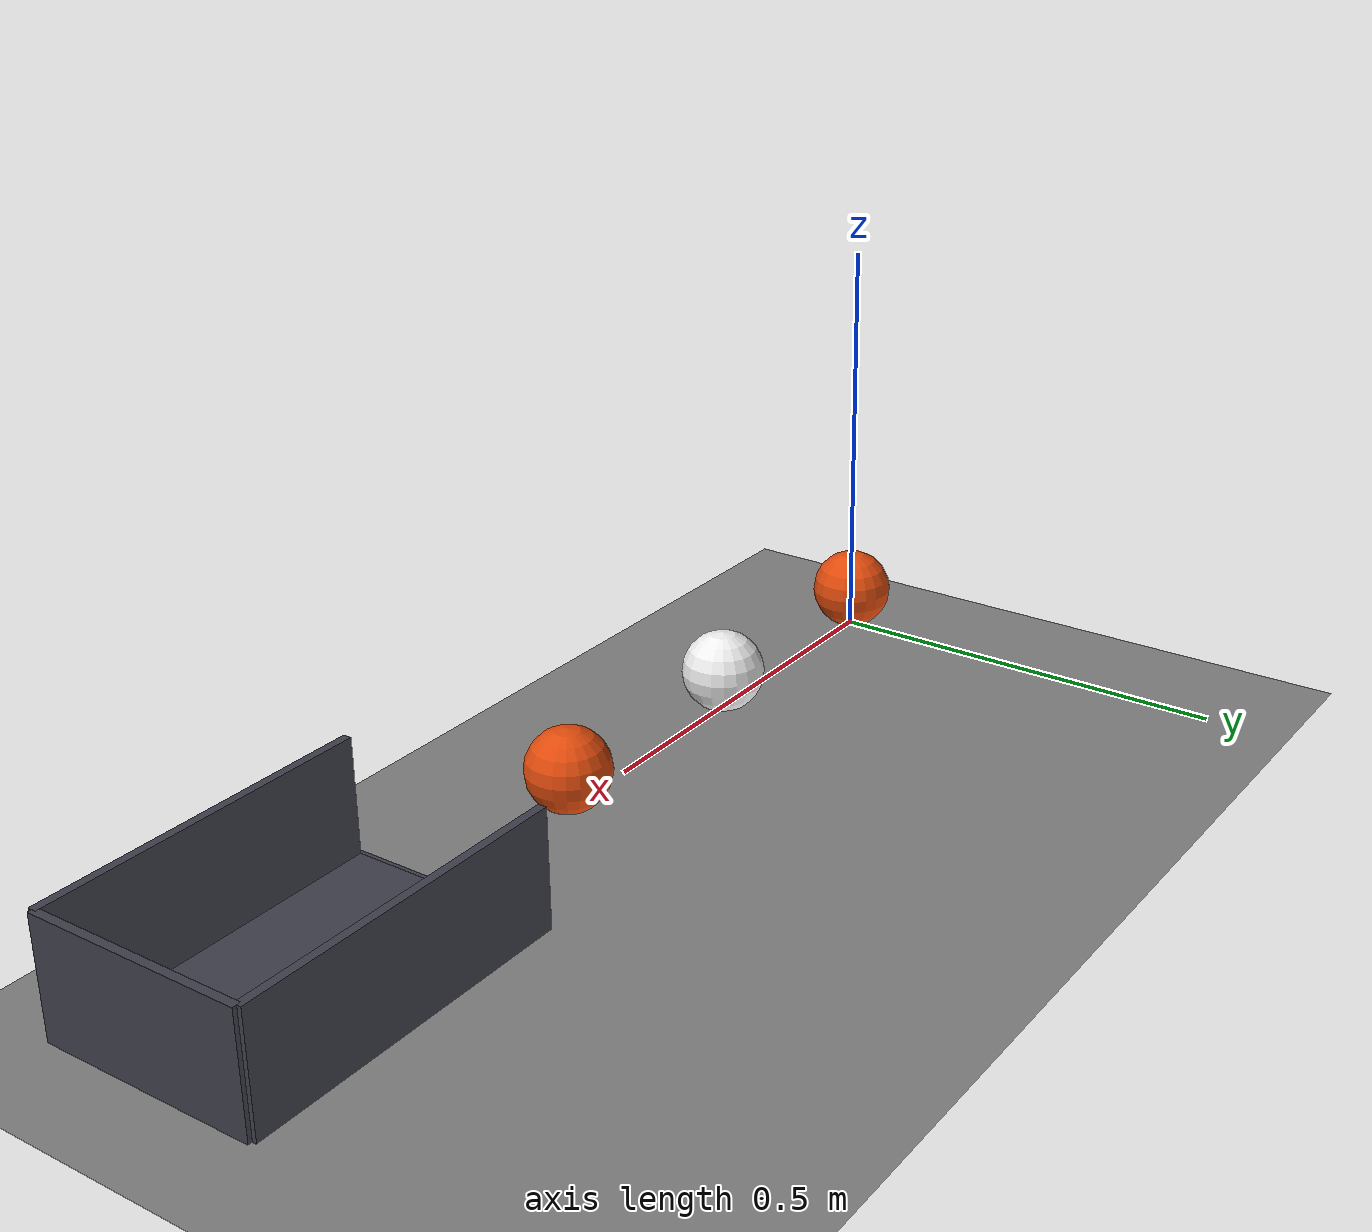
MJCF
<mujoco model="three_ball_relay_into_a_cup">
  <compiler angle="radian"/>
  <option timestep="0.002"/>
  <worldbody>
    <geom name="floor" type="plane" size="4 4 0.1" friction="0.6 0.005 0.001"/>
    <body name="ball1" pos="0 0 0.05">
      <freejoint/>
      <geom name="ball1" type="sphere" pos="0 0 0" size="0.05" mass="0.2" condim="6" friction="0.6 0.005 0.008" solref="0.01 0.2" rgba="0.9 0.3 0.05 1"/>
    </body>
    <body name="ball2" pos="0.3 0 0.05">
      <freejoint/>
      <geom name="ball2" type="sphere" pos="0 0 0" size="0.05" mass="0.2" condim="6" friction="0.6 0.005 0.004" solref="0.01 0.2" rgba="0.95 0.95 0.95 1"/>
    </body>
    <body name="ball3" pos="0.6 0 0.05">
      <freejoint/>
      <geom name="ball3" type="sphere" pos="0 0 0" size="0.05" mass="0.2" condim="6" friction="0.6 0.005 0.001" solref="0.01 0.2" rgba="0.9 0.3 0.05 1"/>
    </body>
    <body name="cup">
      <geom name="cup_base" type="box" pos="1 0 0.0005" size="0.2 0.13 0.0005" friction="0.9 0.02 0.006" solref="0.01 1" rgba="0.25 0.25 0.3 1"/>
      <geom name="cup_near_wall" type="box" pos="0.8 0 0.0005" size="0.005 0.13 0.0005" friction="0.9 0.02 0.006" solref="0.01 1" rgba="0.25 0.25 0.3 1"/>
      <geom name="cup_far_wall" type="box" pos="1.2 0 0.07" size="0.005 0.13 0.07" friction="0.9 0.02 0.006" solref="0.01 1" rgba="0.25 0.25 0.3 1"/>
      <geom name="cup_left_wall" type="box" pos="1 0.13 0.07" size="0.2 0.005 0.07" friction="0.9 0.02 0.006" solref="0.01 1" rgba="0.25 0.25 0.3 1"/>
      <geom name="cup_right_wall" type="box" pos="1 -0.13 0.07" size="0.2 0.005 0.07" friction="0.9 0.02 0.006" solref="0.01 1" rgba="0.25 0.25 0.3 1"/>
    </body>
  </worldbody>
  <keyframe>
    <key name="start" qpos="0 0 0.05 1 0 0 0 0.3 0 0.05 1 0 0 0 0.6 0 0.05 1 0 0 0" qvel="2 0 0 0 40 0 0 0 0 0 0 0 0 0 0 0 0 0"/>
  </keyframe>
</mujoco>
